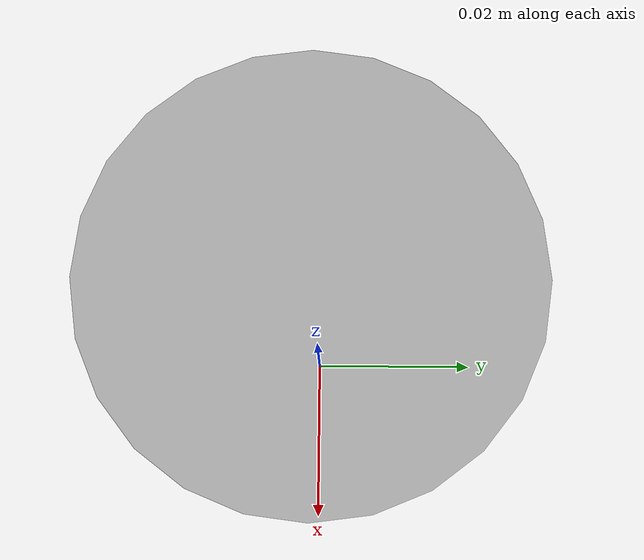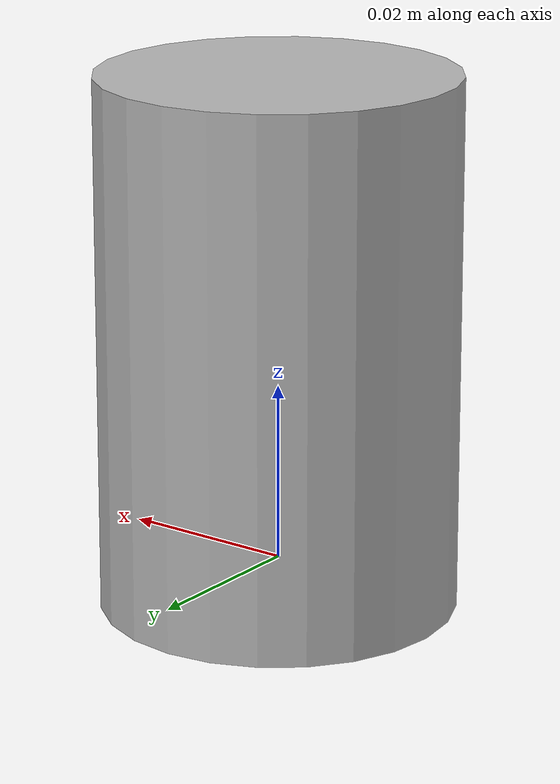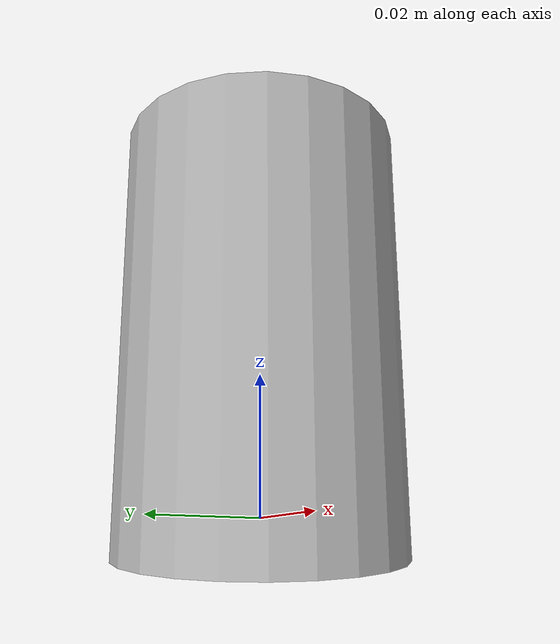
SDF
<?xml version='1.0'?>
<sdf version="1.4">
<model name="Cylinder">
  <pose>0 0 0.025 0 0 0</pose>
  <static>true</static>
    <link name="link">
      <collision name="collision">
        <geometry>
          <cylinder>
            <radius>0.02</radius>
            <length>0.06</length>
          </cylinder>
        </geometry>
      </collision>
      <visual name="visual">
        <geometry>
          <cylinder>
            <radius>0.02</radius>
            <length>0.06</length>
          </cylinder>
        </geometry>
      </visual>
    </link>
  </model>
</sdf>
